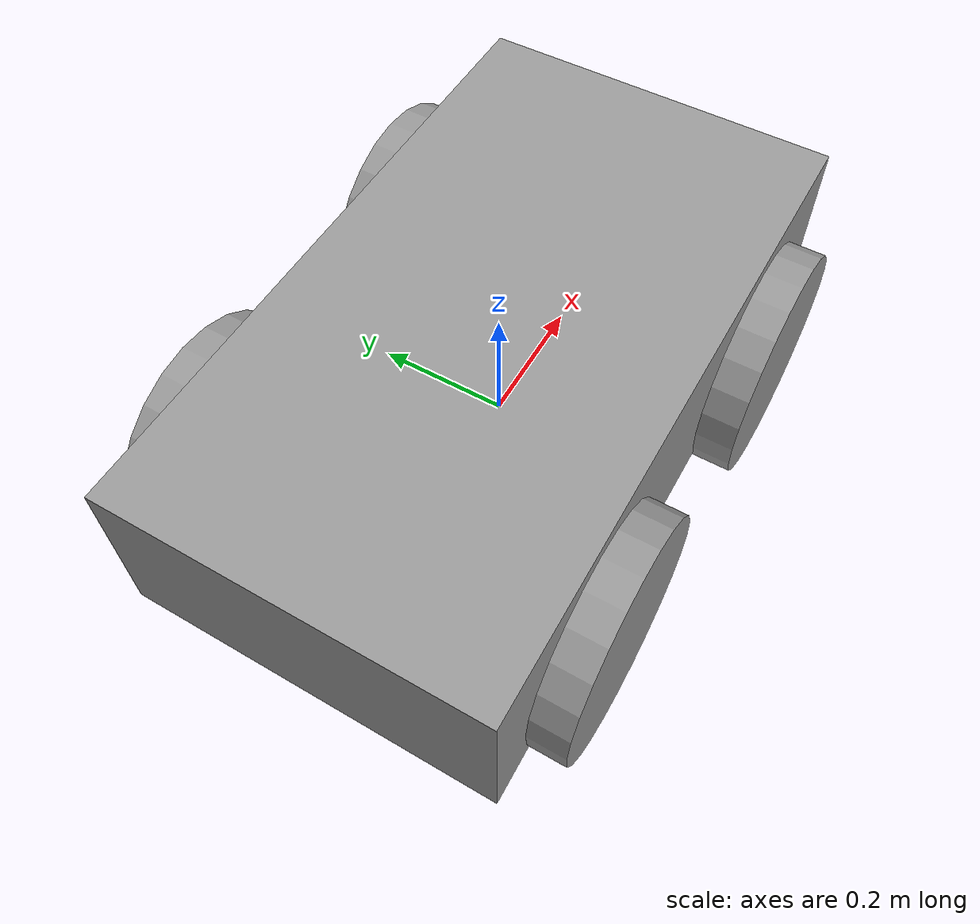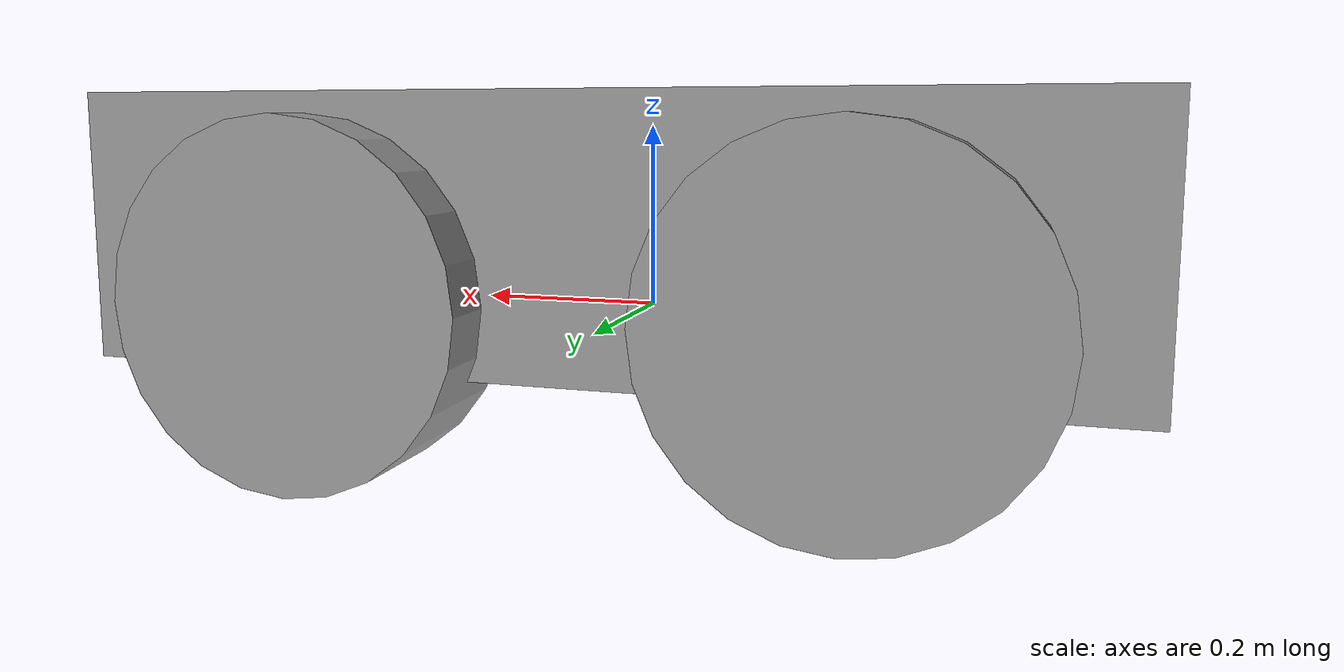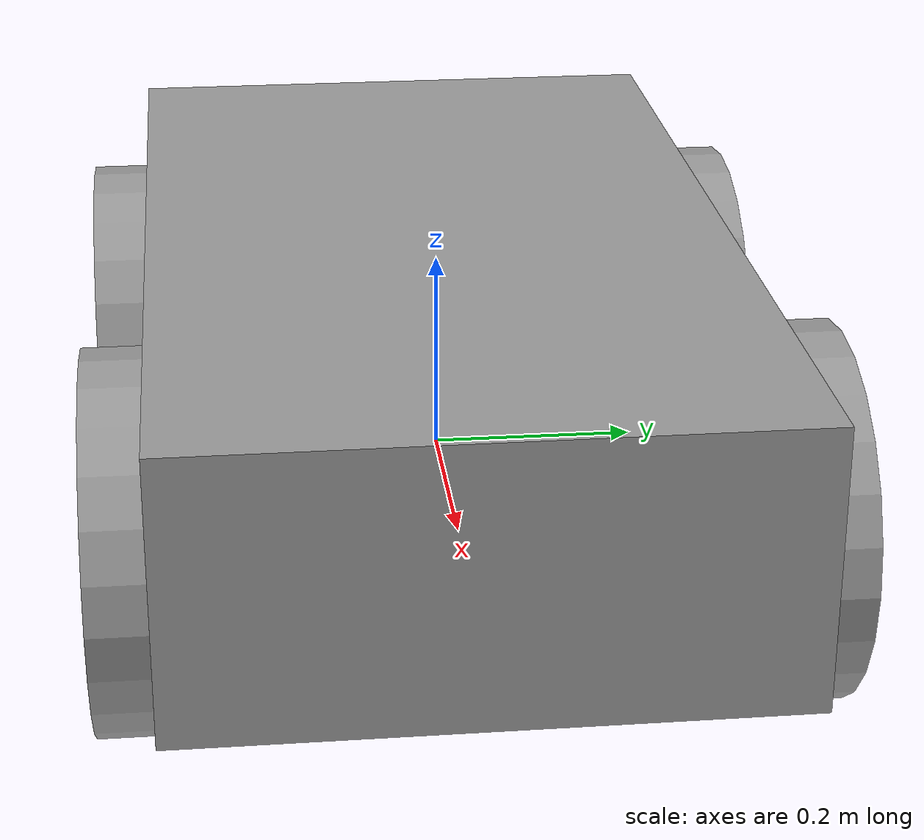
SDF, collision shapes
<?xml version='1.0'?>
<sdf version='1.6'>
  <model name='husky'>
    <link name='base_link'>
      <inertial>
        <mass>33.855</mass>
        <pose frame=''>-0.085613 -0.00084 0.238145 0 -0 0</pose>
        <inertia>
          <ixx>2.2343</ixx>
          <ixy>-0.023642</ixy>
          <ixz>0.275174</ixz>
          <iyy>3.42518</iyy>
          <iyz>0.00239624</iyz>
          <izz>2.1241</izz>
        </inertia>
      </inertial>
      <self_collide>0</self_collide>
      <enable_wind>0</enable_wind>
      <kinematic>0</kinematic>
      <pose frame=''>0 0 0 0 -0 0</pose>
      <visual name='user_rail'>
        <pose frame=''>0.272 0 0.245 0 -0 0</pose>
        <geometry>
          <mesh>
            <uri>model://husky/meshes/user_rail.stl</uri>
          </mesh>
        </geometry>
        <material>
          <script>
            <name>Gazebo/Grey</name>
            <uri>__default__</uri>
          </script>
        </material>
        <transparency>0</transparency>
        <cast_shadows>1</cast_shadows>
      </visual>
      <visual name='base'>
        <pose frame=''>0 0 0 0 -0 0</pose>
        <geometry>
          <mesh>
            <uri>model://husky/meshes/base_link.stl</uri>
          </mesh>
        </geometry>
        <material>
          <script>
            <name>Gazebo/FlatBlack</name>
            <uri>__default__</uri>
          </script>
        </material>
        <transparency>0</transparency>
        <cast_shadows>1</cast_shadows>
      </visual>
      <visual name='front_bumper'>
        <pose frame=''>0.47 0 0.091 0 -0 0</pose>
        <geometry>
          <mesh>
            <uri>model://husky/meshes/bumper.stl</uri>
          </mesh>
        </geometry>
        <material>
          <script>
            <name>Gazebo/FlatBlack</name>
            <uri>__default__</uri>
          </script>
        </material>
        <transparency>0</transparency>
        <cast_shadows>1</cast_shadows>
      </visual>
      <visual name='rear_bumper'>
        <pose frame=''>-0.47 0 0.091 0 -0 3.141</pose>
        <geometry>
          <mesh>
            <uri>model://husky/meshes/bumper.stl</uri>
          </mesh>
        </geometry>
        <material>
          <script>
            <name>Gazebo/FlatBlack</name>
            <uri>__default__</uri>
          </script>
        </material>
        <transparency>0</transparency>
        <cast_shadows>1</cast_shadows>
      </visual>
      <visual name='top_plate'>
        <pose frame=''>0 0 0 0 -0 0</pose>
        <geometry>
          <mesh>
            <uri>model://husky/meshes/top_plate.stl</uri>
          </mesh>
        </geometry>
        <material>
          <script>
            <name>Gazebo/Yellow</name>
            <uri>__default__</uri>
          </script>
        </material>
        <transparency>0</transparency>
        <cast_shadows>1</cast_shadows>
      </visual>
      <collision name='collision'>
        <laser_retro>0</laser_retro>
        <max_contacts>10</max_contacts>
        <pose frame=''>0 0 0.1 0 -0 0</pose>
        <geometry>
          <box>
            <size>1.0074 0.5709 0.2675</size>
          </box>
        </geometry>
        <surface>
          <friction>
            <ode>
              <mu>1</mu>
              <mu2>1</mu2>
              <fdir1>0 0 0</fdir1>
              <slip1>0</slip1>
              <slip2>0</slip2>
            </ode>
            <torsional>
              <coefficient>1</coefficient>
              <patch_radius>0</patch_radius>
              <surface_radius>0</surface_radius>
              <use_patch_radius>1</use_patch_radius>
              <ode>
                <slip>0</slip>
              </ode>
            </torsional>
          </friction>
          <bounce>
            <restitution_coefficient>0</restitution_coefficient>
            <threshold>1e+06</threshold>
          </bounce>
          <contact>
            <collide_without_contact>0</collide_without_contact>
            <collide_without_contact_bitmask>1</collide_without_contact_bitmask>
            <collide_bitmask>1</collide_bitmask>
            <ode>
              <soft_cfm>0</soft_cfm>
              <soft_erp>0.2</soft_erp>
              <kp>1e+13</kp>
              <kd>1</kd>
              <max_vel>0.01</max_vel>
              <min_depth>0</min_depth>
            </ode>
            <bullet>
              <split_impulse>1</split_impulse>
              <split_impulse_penetration_threshold>-0.01</split_impulse_penetration_threshold>
              <soft_cfm>0</soft_cfm>
              <soft_erp>0.2</soft_erp>
              <kp>1e+13</kp>
              <kd>1</kd>
            </bullet>
          </contact>
        </surface>
      </collision>
    </link>
    <link name='back_left_wheel'>
      <pose frame=''>-0.256 0.285475 0.035 0 -0 0</pose>
      <inertial>
        <mass>2.6357</mass>
        <pose frame=''>0 0 0 0 -0 0</pose>
        <inertia>
          <ixx>0.0246688</ixx>
          <ixy>0</ixy>
          <ixz>0</ixz>
          <iyy>0.0246688</iyy>
          <iyz>0</iyz>
          <izz>0.0441058</izz>
        </inertia>
      </inertial>
      <self_collide>0</self_collide>
      <enable_wind>0</enable_wind>
      <kinematic>0</kinematic>
      <visual name='back_left_wheel'>
        <pose frame=''>0 0 0 -3.14159 0 0</pose>
        <geometry>
          <mesh>
            <uri>model://husky/meshes/wheel.stl</uri>
          </mesh>
        </geometry>
        <material>
          <script>
            <name>Gazebo/Grey</name>
            <uri>__default__</uri>
          </script>
        </material>
        <transparency>0</transparency>
        <cast_shadows>1</cast_shadows>
      </visual>
      <collision name='back_left_wheel_collision'>
        <laser_retro>0</laser_retro>
        <max_contacts>10</max_contacts>
        <pose frame=''>0 0 0 -1.5707 0 0</pose>
        <geometry>
          <cylinder>
            <radius>0.17775</radius>
            <length>0.1143</length>
          </cylinder>
        </geometry>
        <surface>
          <friction>
            <ode>
              <mu>100000</mu>
              <mu2>100000</mu2>
              <fdir1>0 0 0</fdir1>
              <slip1>0</slip1>
              <slip2>0</slip2>
            </ode>
            <torsional>
              <coefficient>1</coefficient>
              <patch_radius>0</patch_radius>
              <surface_radius>0</surface_radius>
              <use_patch_radius>1</use_patch_radius>
              <ode>
                <slip>0</slip>
              </ode>
            </torsional>
          </friction>
          <bounce>
            <restitution_coefficient>0</restitution_coefficient>
            <threshold>1e+06</threshold>
          </bounce>
          <contact>
            <collide_without_contact>0</collide_without_contact>
            <collide_without_contact_bitmask>1</collide_without_contact_bitmask>
            <collide_bitmask>1</collide_bitmask>
            <ode>
              <soft_cfm>0</soft_cfm>
              <soft_erp>0.2</soft_erp>
              <kp>1e+13</kp>
              <kd>1</kd>
              <max_vel>0.01</max_vel>
              <min_depth>0</min_depth>
            </ode>
            <bullet>
              <split_impulse>1</split_impulse>
              <split_impulse_penetration_threshold>-0.01</split_impulse_penetration_threshold>
              <soft_cfm>0</soft_cfm>
              <soft_erp>0.2</soft_erp>
              <kp>1e+13</kp>
              <kd>1</kd>
            </bullet>
          </contact>
        </surface>
      </collision>
    </link>
    <link name='back_right_wheel'>
      <pose frame=''>-0.256 -0.285475 0.035 0 -0 0</pose>
      <inertial>
        <mass>2.6357</mass>
        <pose frame=''>0 0 0 0 -0 0</pose>
        <inertia>
          <ixx>0.0246688</ixx>
          <ixy>0</ixy>
          <ixz>0</ixz>
          <iyy>0.0246688</iyy>
          <iyz>0</iyz>
          <izz>0.0441058</izz>
        </inertia>
      </inertial>
      <self_collide>0</self_collide>
      <enable_wind>0</enable_wind>
      <kinematic>0</kinematic>
      <visual name='back_right_wheel'>
        <pose frame=''>0 0 0 -3.14159 0 0</pose>
        <geometry>
          <mesh>
            <uri>model://husky/meshes/wheel.stl</uri>
          </mesh>
        </geometry>
        <material>
          <script>
            <name>Gazebo/Grey</name>
            <uri>__default__</uri>
          </script>
        </material>
        <transparency>0</transparency>
        <cast_shadows>1</cast_shadows>
      </visual>
      <collision name='back_right_wheel_collision'>
        <laser_retro>0</laser_retro>
        <max_contacts>10</max_contacts>
        <pose frame=''>0 0 0 -1.5707 0 0</pose>
        <geometry>
          <cylinder>
            <radius>0.17775</radius>
            <length>0.1143</length>
          </cylinder>
        </geometry>
        <surface>
          <friction>
            <ode>
              <mu>100000</mu>
              <mu2>100000</mu2>
              <fdir1>0 0 0</fdir1>
              <slip1>0</slip1>
              <slip2>0</slip2>
            </ode>
            <torsional>
              <coefficient>1</coefficient>
              <patch_radius>0</patch_radius>
              <surface_radius>0</surface_radius>
              <use_patch_radius>1</use_patch_radius>
              <ode>
                <slip>0</slip>
              </ode>
            </torsional>
          </friction>
          <bounce>
            <restitution_coefficient>0</restitution_coefficient>
            <threshold>1e+06</threshold>
          </bounce>
          <contact>
            <collide_without_contact>0</collide_without_contact>
            <collide_without_contact_bitmask>1</collide_without_contact_bitmask>
            <collide_bitmask>1</collide_bitmask>
            <ode>
              <soft_cfm>0</soft_cfm>
              <soft_erp>0.2</soft_erp>
              <kp>1e+13</kp>
              <kd>1</kd>
              <max_vel>0.01</max_vel>
              <min_depth>0</min_depth>
            </ode>
            <bullet>
              <split_impulse>1</split_impulse>
              <split_impulse_penetration_threshold>-0.01</split_impulse_penetration_threshold>
              <soft_cfm>0</soft_cfm>
              <soft_erp>0.2</soft_erp>
              <kp>1e+13</kp>
              <kd>1</kd>
            </bullet>
          </contact>
        </surface>
      </collision>
    </link>
    <link name='front_left_wheel'>
      <pose frame=''>0.256 0.285475 0.035 0 -0 0</pose>
      <inertial>
        <mass>2.6357</mass>
        <pose frame=''>0 0 0 0 -0 0</pose>
        <inertia>
          <ixx>0.0246688</ixx>
          <ixy>0</ixy>
          <ixz>0</ixz>
          <iyy>0.0246688</iyy>
          <iyz>0</iyz>
          <izz>0.0441058</izz>
        </inertia>
      </inertial>
      <self_collide>0</self_collide>
      <enable_wind>0</enable_wind>
      <kinematic>0</kinematic>
      <visual name='front_left_wheel'>
        <pose frame=''>0 0 0 -3.14159 0 0</pose>
        <geometry>
          <mesh>
            <uri>model://husky/meshes/wheel.stl</uri>
          </mesh>
        </geometry>
        <material>
          <script>
            <name>Gazebo/Grey</name>
            <uri>__default__</uri>
          </script>
        </material>
        <transparency>0</transparency>
        <cast_shadows>1</cast_shadows>
      </visual>
      <collision name='front_left_wheel_collision'>
        <laser_retro>0</laser_retro>
        <max_contacts>10</max_contacts>
        <pose frame=''>0 0 0 -1.5707 0 0</pose>
        <geometry>
          <cylinder>
            <radius>0.17775</radius>
            <length>0.1143</length>
          </cylinder>
        </geometry>
        <surface>
          <friction>
            <ode>
              <mu>100000</mu>
              <mu2>100000</mu2>
              <fdir1>0 0 0</fdir1>
              <slip1>0</slip1>
              <slip2>0</slip2>
            </ode>
            <torsional>
              <coefficient>1</coefficient>
              <patch_radius>0</patch_radius>
              <surface_radius>0</surface_radius>
              <use_patch_radius>1</use_patch_radius>
              <ode>
                <slip>0</slip>
              </ode>
            </torsional>
          </friction>
          <bounce>
            <restitution_coefficient>0</restitution_coefficient>
            <threshold>1e+06</threshold>
          </bounce>
          <contact>
            <collide_without_contact>0</collide_without_contact>
            <collide_without_contact_bitmask>1</collide_without_contact_bitmask>
            <collide_bitmask>1</collide_bitmask>
            <ode>
              <soft_cfm>0</soft_cfm>
              <soft_erp>0.2</soft_erp>
              <kp>1e+13</kp>
              <kd>1</kd>
              <max_vel>0.01</max_vel>
              <min_depth>0</min_depth>
            </ode>
            <bullet>
              <split_impulse>1</split_impulse>
              <split_impulse_penetration_threshold>-0.01</split_impulse_penetration_threshold>
              <soft_cfm>0</soft_cfm>
              <soft_erp>0.2</soft_erp>
              <kp>1e+13</kp>
              <kd>1</kd>
            </bullet>
          </contact>
        </surface>
      </collision>
    </link>
    <link name='front_right_wheel'>
      <pose frame=''>0.256 -0.285475 0.035 0 -0 0</pose>
      <inertial>
        <mass>2.6357</mass>
        <pose frame=''>0 0 0 0 -0 0</pose>
        <inertia>
          <ixx>0.0246688</ixx>
          <ixy>0</ixy>
          <ixz>0</ixz>
          <iyy>0.0246688</iyy>
          <iyz>0</iyz>
          <izz>0.0441058</izz>
        </inertia>
      </inertial>
      <self_collide>0</self_collide>
      <enable_wind>0</enable_wind>
      <kinematic>0</kinematic>
      <visual name='front_right_wheel'>
        <pose frame=''>0 0 0 -3.14159 0 0</pose>
        <geometry>
          <mesh>
            <uri>model://husky/meshes/wheel.stl</uri>
          </mesh>
        </geometry>
        <material>
          <script>
            <name>Gazebo/Grey</name>
            <uri>__default__</uri>
          </script>
        </material>
        <transparency>0</transparency>
        <cast_shadows>1</cast_shadows>
      </visual>
      <collision name='front_right_wheel_collision'>
        <laser_retro>0</laser_retro>
        <max_contacts>10</max_contacts>
        <pose frame=''>0 0 0 -1.5707 0 0</pose>
        <geometry>
          <cylinder>
            <radius>0.17775</radius>
            <length>0.1143</length>
          </cylinder>
        </geometry>
        <surface>
          <friction>
            <ode>
              <mu>100000</mu>
              <mu2>100000</mu2>
              <fdir1>0 0 0</fdir1>
              <slip1>0</slip1>
              <slip2>0</slip2>
            </ode>
            <torsional>
              <coefficient>1</coefficient>
              <patch_radius>0</patch_radius>
              <surface_radius>0</surface_radius>
              <use_patch_radius>1</use_patch_radius>
              <ode>
                <slip>0</slip>
              </ode>
            </torsional>
          </friction>
          <bounce>
            <restitution_coefficient>0</restitution_coefficient>
            <threshold>1e+06</threshold>
          </bounce>
          <contact>
            <collide_without_contact>0</collide_without_contact>
            <collide_without_contact_bitmask>1</collide_without_contact_bitmask>
            <collide_bitmask>1</collide_bitmask>
            <ode>
              <soft_cfm>0</soft_cfm>
              <soft_erp>0.2</soft_erp>
              <kp>1e+13</kp>
              <kd>1</kd>
              <max_vel>0.01</max_vel>
              <min_depth>0</min_depth>
            </ode>
            <bullet>
              <split_impulse>1</split_impulse>
              <split_impulse_penetration_threshold>-0.01</split_impulse_penetration_threshold>
              <soft_cfm>0</soft_cfm>
              <soft_erp>0.2</soft_erp>
              <kp>1e+13</kp>
              <kd>1</kd>
            </bullet>
          </contact>
        </surface>
      </collision>
    </link>
    <joint name='back_left_joint' type='revolute'>
      <parent>base_link</parent>
      <child>back_left_wheel</child>
      <pose frame=''>0 0 0 0 -0 0</pose>
      <axis>
        <xyz>0 1 0</xyz>
        <use_parent_model_frame>1</use_parent_model_frame>
        <limit>
          <lower>-1e+16</lower>
          <upper>1e+16</upper>
          <effort>-1</effort>
          <velocity>-1</velocity>
        </limit>
        <dynamics>
          <spring_reference>0</spring_reference>
          <spring_stiffness>0</spring_stiffness>
          <damping>0</damping>
          <friction>0</friction>
        </dynamics>
      </axis>
      <physics>
        <ode>
          <limit>
            <cfm>0</cfm>
            <erp>0.9</erp>
          </limit>
          <suspension>
            <cfm>0</cfm>
            <erp>0.2</erp>
          </suspension>
        </ode>
      </physics>
    </joint>
    <joint name='back_right_joint' type='revolute'>
      <parent>base_link</parent>
      <child>back_right_wheel</child>
      <pose frame=''>0 0 0 0 -0 0</pose>
      <axis>
        <xyz>0 1 0</xyz>
        <use_parent_model_frame>1</use_parent_model_frame>
        <limit>
          <lower>-1e+16</lower>
          <upper>1e+16</upper>
          <effort>-1</effort>
          <velocity>-1</velocity>
        </limit>
        <dynamics>
          <spring_reference>0</spring_reference>
          <spring_stiffness>0</spring_stiffness>
          <damping>0</damping>
          <friction>0</friction>
        </dynamics>
      </axis>
      <physics>
        <ode>
          <limit>
            <cfm>0</cfm>
            <erp>0.9</erp>
          </limit>
          <suspension>
            <cfm>0</cfm>
            <erp>0.2</erp>
          </suspension>
        </ode>
      </physics>
    </joint>
    <joint name='front_left_joint' type='revolute'>
      <parent>base_link</parent>
      <child>front_left_wheel</child>
      <pose frame=''>0 0 0 0 -0 0</pose>
      <axis>
        <xyz>0 1 0</xyz>
        <use_parent_model_frame>1</use_parent_model_frame>
        <limit>
          <lower>-1e+16</lower>
          <upper>1e+16</upper>
          <effort>-1</effort>
          <velocity>-1</velocity>
        </limit>
        <dynamics>
          <spring_reference>0</spring_reference>
          <spring_stiffness>0</spring_stiffness>
          <damping>0</damping>
          <friction>0</friction>
        </dynamics>
      </axis>
      <physics>
        <ode>
          <limit>
            <cfm>0</cfm>
            <erp>0.9</erp>
          </limit>
          <suspension>
            <cfm>0</cfm>
            <erp>0.2</erp>
          </suspension>
        </ode>
      </physics>
    </joint>
    <joint name='front_right_joint' type='revolute'>
      <parent>base_link</parent>
      <child>front_right_wheel</child>
      <pose frame=''>0 0 0 0 -0 0</pose>
      <axis>
        <xyz>0 1 0</xyz>
        <use_parent_model_frame>1</use_parent_model_frame>
        <limit>
          <lower>-1e+16</lower>
          <upper>1e+16</upper>
          <effort>-1</effort>
          <velocity>-1</velocity>
        </limit>
        <dynamics>
          <spring_reference>0</spring_reference>
          <spring_stiffness>0</spring_stiffness>
          <damping>0</damping>
          <friction>0</friction>
        </dynamics>
      </axis>
      <physics>
        <ode>
          <limit>
            <cfm>0</cfm>
            <erp>0.9</erp>
          </limit>
          <suspension>
            <cfm>0</cfm>
            <erp>0.2</erp>
          </suspension>
        </ode>
      </physics>
    </joint>
    <static>0</static>
    <allow_auto_disable>1</allow_auto_disable>

  <plugin name="skid_steer_drive_controller" filename="libgazebo_ros_skid_steer_drive.so">
    <updateRate>100.0</updateRate>
    <robotNamespace>husky</robotNamespace>
    <leftFrontJoint>front_left_joint</leftFrontJoint>
    <rightFrontJoint>front_right_joint</rightFrontJoint>
    <leftRearJoint>back_left_joint</leftRearJoint>
    <rightRearJoint>back_right_joint</rightRearJoint>
    <wheelSeparation>0.5709</wheelSeparation>
    <wheelDiameter>0.3555</wheelDiameter>
    <robotBaseFrame>base_link</robotBaseFrame>
    <torque>35</torque>
    <topicName>cmd_vel</topicName>
    <broadcastTF>true</broadcastTF>
    <commandTopic>cmd_vel</commandTopic>
    <base_frame_id>base_link</base_frame_id>
    <alwaysOn>true</alwaysOn>
    <odometryFrame>odom</odometryFrame>
    <odometryTopic>odom</odometryTopic>
  </plugin>

  </model>
</sdf>
